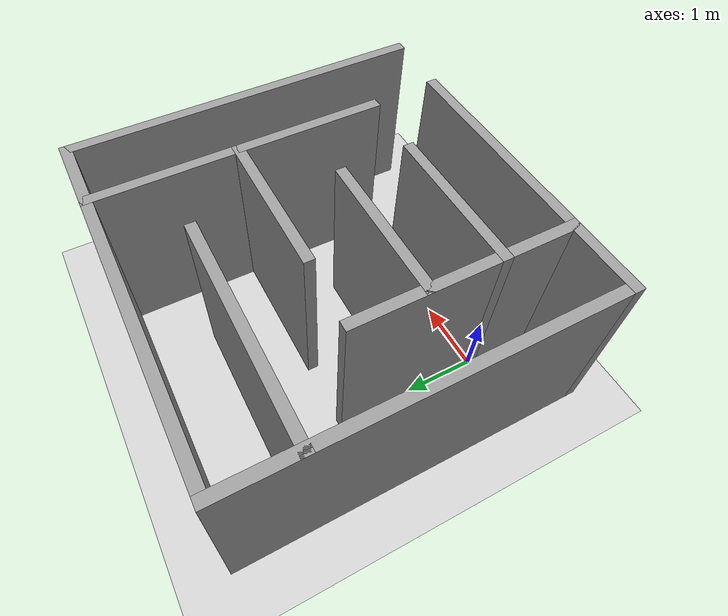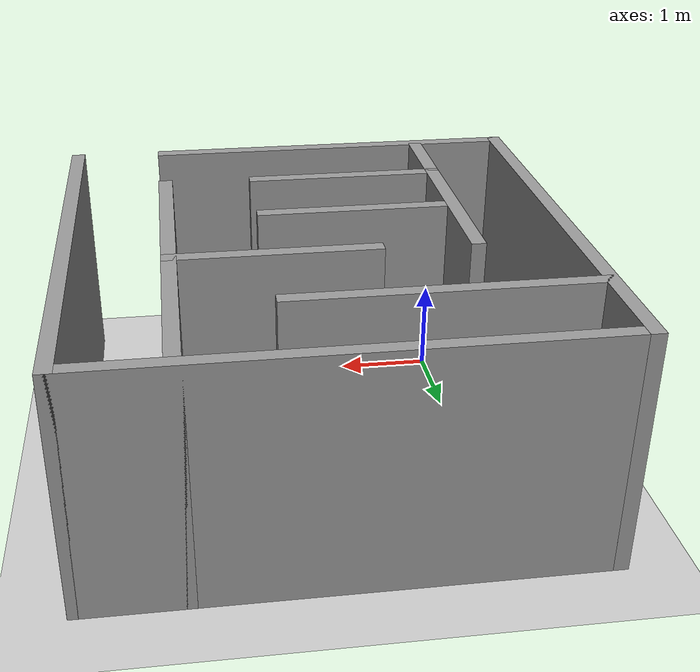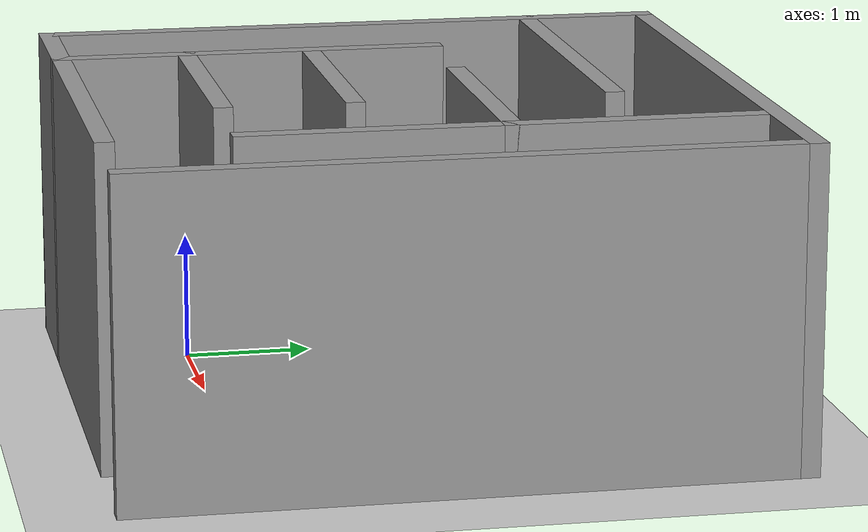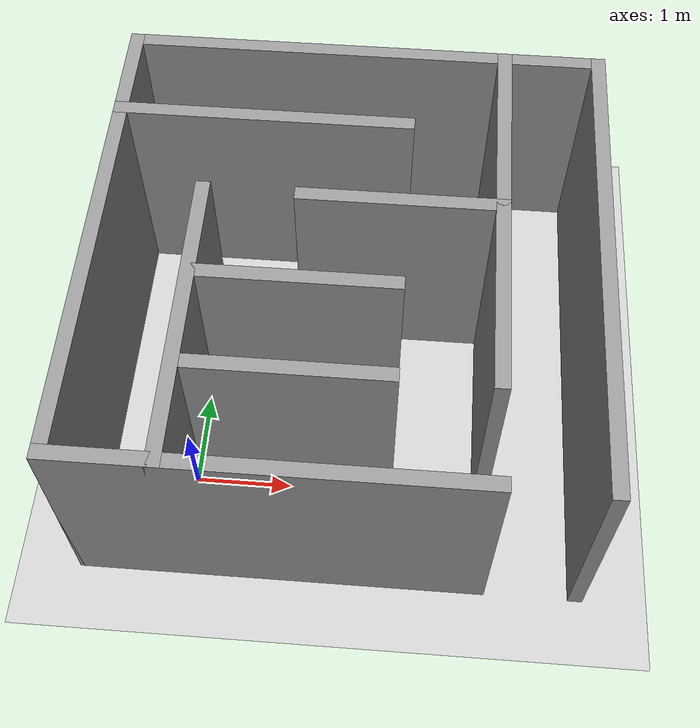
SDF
<sdf version="1.7">
 <world name="default">
  <scene><ambient>0.4 0.4 0.4 1</ambient><background>0.7 0.7 0.7 1</background><shadows>1</shadows></scene>
  <light name="sun" type="directional">
   <pose>0 0 10 0 -0 0</pose>
   <diffuse>0.8 0.8 0.8 1</diffuse>
   <specular>0.2 0.2 0.2 1</specular>
   <attenuation>
    <range>1000</range>
    <constant>0.9</constant>
    <linear>0.01</linear>
    <quadratic>0.001</quadratic>
   </attenuation>
   <direction>-0.5 0.1 -0.9</direction>
   <spot><inner_angle>0</inner_angle><outer_angle>0</outer_angle><falloff>0</falloff></spot>
  </light>
  <model name="ground_plane">
   <static>1</static>
   <link name="link">
    <collision name="collision">
     <geometry><plane><normal>0 0 1</normal><size>100 100</size></plane></geometry>
     <surface>
      <contact><collide_bitmask>65535</collide_bitmask></contact>
      <friction><ode><mu>100</mu><mu2>50</mu2></ode></friction>
     </surface>
    </collision>
    <visual name="visual">
     <cast_shadows>0</cast_shadows>
     <geometry><plane><normal>0 0 1</normal><size>100 100</size></plane></geometry>
     <material>
      <script><uri>file://media/materials/scripts/gazebo.material</uri><name>Gazebo/Grey</name></script>
     </material>
    </visual>
   </link>
  </model>
  <physics type="ode">
   <real_time_update_rate>1000</real_time_update_rate>
   <max_step_size>0.001</max_step_size>
   <real_time_factor>1</real_time_factor>
   <ode>
    <solver>
     <type>quick</type>
     <iters>150</iters>
     <precon_iters>0</precon_iters>
     <sor>1.4</sor>
     <use_dynamic_moi_rescaling>1</use_dynamic_moi_rescaling>
    </solver>
    <constraints>
     <cfm>1e-05</cfm>
     <erp>0.2</erp>
     <contact_max_correcting_vel>2000</contact_max_correcting_vel>
     <contact_surface_layer>0.01</contact_surface_layer>
    </constraints>
   </ode>
  </physics>
  <gravity>0 0 -9.8</gravity>
  <magnetic_field>6e-06 2.3e-05 -4.2e-05</magnetic_field>
  <atmosphere type="adiabatic"/>
  <spherical_coordinates>
   <surface_model>EARTH_WGS84</surface_model>
   <latitude_deg>0</latitude_deg>
   <longitude_deg>0</longitude_deg>
   <elevation>0</elevation>
   <heading_deg>0</heading_deg>
  </spherical_coordinates>
  <model name="final_maze">
   <pose>1.5031 1.52723 0 0 -0 0</pose>
   <link name="Wall_24">
    <collision name="Wall_24_Collision">
     <geometry><box><size>4.15 0.15 2.5</size></box></geometry>
     <pose>0 0 1.25 0 -0 0</pose>
    </collision>
    <visual name="Wall_24_Visual">
     <pose>0 0 1.25 0 -0 0</pose>
     <geometry><box><size>4.15 0.15 2.5</size></box></geometry>
     <material>
      <script><uri>file://media/materials/scripts/gazebo.material</uri><name>Gazebo/Grey</name></script>
      <ambient>1 1 1 1</ambient>
     </material>
     <meta><layer>0</layer></meta>
    </visual>
    <pose>-0.5 -2.5 0 0 -0 0</pose>
   </link>
   <link name="Wall_26">
    <collision name="Wall_26_Collision">
     <geometry><box><size>5.15 0.15 2.5</size></box></geometry>
     <pose>0 0 1.25 0 -0 0</pose>
    </collision>
    <visual name="Wall_26_Visual">
     <pose>0 0 1.25 0 -0 0</pose>
     <geometry><box><size>5.15 0.15 2.5</size></box></geometry>
     <material>
      <script><uri>file://media/materials/scripts/gazebo.material</uri><name>Gazebo/Grey</name></script>
      <ambient>1 1 1 1</ambient>
     </material>
     <meta><layer>0</layer></meta>
    </visual>
    <pose>-2.5 0 0 0 -0 1.5708</pose>
   </link>
   <link name="Wall_28">
    <collision name="Wall_28_Collision">
     <geometry><box><size>5.15 0.15 2.5</size></box></geometry>
     <pose>0 0 1.25 0 -0 0</pose>
    </collision>
    <visual name="Wall_28_Visual">
     <pose>0 0 1.25 0 -0 0</pose>
     <geometry><box><size>5.15 0.15 2.5</size></box></geometry>
     <material>
      <script><uri>file://media/materials/scripts/gazebo.material</uri><name>Gazebo/Grey</name></script>
      <ambient>1 1 1 1</ambient>
     </material>
     <meta><layer>0</layer></meta>
    </visual>
    <pose>2.5 0 0 0 -0 1.5708</pose>
   </link>
   <link name="Wall_30">
    <collision name="Wall_30_Collision">
     <geometry><box><size>5 0.15 2.5</size></box></geometry>
     <pose>0 0 1.25 0 -0 0</pose>
    </collision>
    <visual name="Wall_30_Visual">
     <pose>0 0 1.25 0 -0 0</pose>
     <geometry><box><size>5 0.15 2.5</size></box></geometry>
     <material>
      <script><uri>file://media/materials/scripts/gazebo.material</uri><name>Gazebo/Grey</name></script>
      <ambient>1 1 1 1</ambient>
     </material>
     <meta><layer>0</layer></meta>
    </visual>
    <pose>0.075 2.5 0 0 -0 0</pose>
   </link>
   <link name="Wall_33">
    <collision name="Wall_33_Collision">
     <geometry><box><size>3.15 0.15 2.5</size></box></geometry>
     <pose>0 0 1.25 0 -0 0</pose>
    </collision>
    <visual name="Wall_33_Visual">
     <pose>0 0 1.25 0 -0 0</pose>
     <geometry><box><size>3.15 0.15 2.5</size></box></geometry>
     <material>
      <script><uri>file://media/materials/scripts/gazebo.material</uri><name>Gazebo/Grey</name></script>
      <ambient>1 1 1 1</ambient>
     </material>
     <meta><layer>0</layer></meta>
    </visual>
    <pose>-1 1.5 0 0 -0 0</pose>
   </link>
   <link name="Wall_37">
    <collision name="Wall_37_Collision">
     <geometry><box><size>4.15 0.15 2.5</size></box></geometry>
     <pose>0 0 1.25 0 -0 0</pose>
    </collision>
    <visual name="Wall_37_Visual">
     <pose>0 0 1.25 0 -0 0</pose>
     <geometry><box><size>4.15 0.15 2.5</size></box></geometry>
     <material>
      <script><uri>file://media/materials/scripts/gazebo.material</uri><name>Gazebo/Grey</name></script>
      <ambient>1 1 1 1</ambient>
     </material>
     <meta><layer>0</layer></meta>
    </visual>
    <pose>1.5 0.5 0 0 -0 -1.5708</pose>
   </link>
   <link name="Wall_39">
    <collision name="Wall_39_Collision">
     <geometry><box><size>2.15 0.15 2.5</size></box></geometry>
     <pose>0 0 1.25 0 -0 0</pose>
    </collision>
    <visual name="Wall_39_Visual">
     <pose>0 0 1.25 0 -0 0</pose>
     <geometry><box><size>2.15 0.15 2.5</size></box></geometry>
     <material>
      <script><uri>file://media/materials/scripts/gazebo.material</uri><name>Gazebo/Grey</name></script>
      <ambient>1 1 1 1</ambient>
     </material>
     <meta><layer>0</layer></meta>
    </visual>
    <pose>0.5 0.5 0 0 -0 0</pose>
   </link>
   <link name="Wall_41">
    <collision name="Wall_41_Collision">
     <geometry><box><size>3.15 0.15 2.5</size></box></geometry>
     <pose>0 0 1.25 0 -0 0</pose>
    </collision>
    <visual name="Wall_41_Visual">
     <pose>0 0 1.25 0 -0 0</pose>
     <geometry><box><size>3.15 0.15 2.5</size></box></geometry>
     <material>
      <script><uri>file://media/materials/scripts/gazebo.material</uri><name>Gazebo/Grey</name></script>
      <ambient>1 1 1 1</ambient>
     </material>
     <meta><layer>0</layer></meta>
    </visual>
    <pose>-1.5 -1 0 0 -0 1.5708</pose>
   </link>
   <link name="Wall_43">
    <collision name="Wall_43_Collision">
     <geometry><box><size>2.15 0.15 2.5</size></box></geometry>
     <pose>0 0 1.25 0 -0 0</pose>
    </collision>
    <visual name="Wall_43_Visual">
     <pose>0 0 1.25 0 -0 0</pose>
     <geometry><box><size>2.15 0.15 2.5</size></box></geometry>
     <material>
      <script><uri>file://media/materials/scripts/gazebo.material</uri><name>Gazebo/Grey</name></script>
      <ambient>1 1 1 1</ambient>
     </material>
     <meta><layer>0</layer></meta>
    </visual>
    <pose>-0.5 -0.5 0 0 -0 0</pose>
   </link>
   <link name="Wall_45">
    <collision name="Wall_45_Collision">
     <geometry><box><size>2.15 0.15 2.5</size></box></geometry>
     <pose>0 0 1.25 0 -0 0</pose>
    </collision>
    <visual name="Wall_45_Visual">
     <pose>0 0 1.25 0 -0 0</pose>
     <geometry><box><size>2.15 0.15 2.5</size></box></geometry>
     <material>
      <script><uri>file://media/materials/scripts/gazebo.material</uri><name>Gazebo/Grey</name></script>
      <ambient>1 1 1 1</ambient>
     </material>
     <meta><layer>0</layer></meta>
    </visual>
    <pose>-0.5 -1.5 0 0 -0 0</pose>
   </link>
   <static>1</static>
  </model>
 </world>
</sdf>
